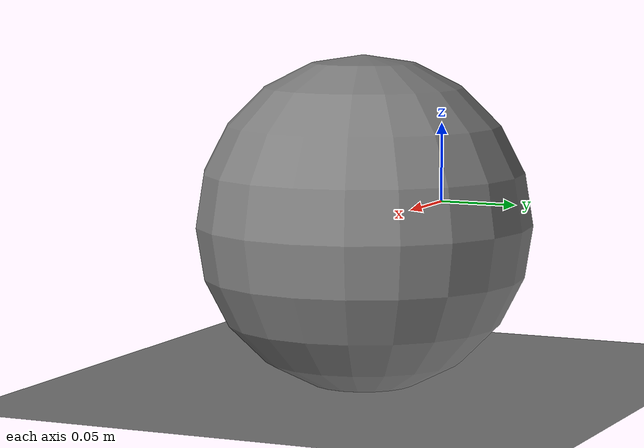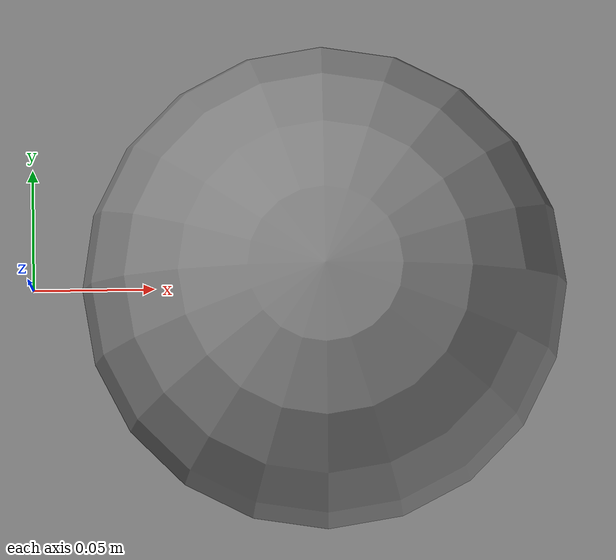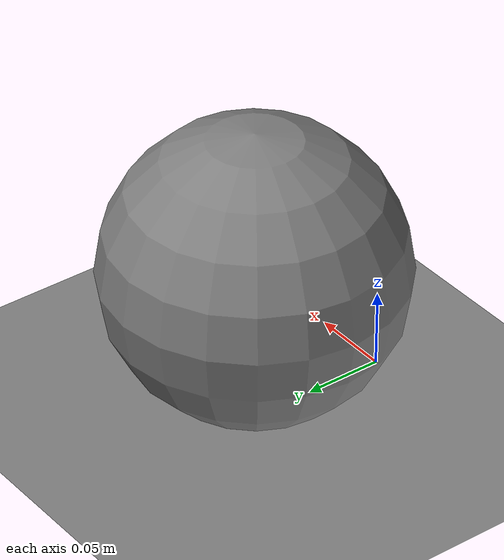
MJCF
<mujoco><option timestep=".0005" integrator="Euler" gravity="0 0 -9.81" solver="Newton" cone="pyramidal" jacobian="auto"><flag constraint="enable" warmstart="disable" island="disable" /></option><worldbody><body name="ref" pos=".25 0 0" /><body name="carrier_0"><freejoint /><inertial pos="0 0 0" mass=".05" diaginertia=".0002 .0002 .0002" /><body name="a"><joint name="j" type="ball" limited="true" frictionloss=".002" range="0 1.5" /><geom pos=".12 0 0" size=".1" mass="1" /></body></body><geom name="controller_floor" type="plane" size="3 3 .1" pos="0 0 -.095" friction=".6 .01 .001" condim="3" /></worldbody><actuator><general joint="j" input="expmap" dyntype="integrator" gaintype="so3" biastype="so3" actdim="3" gainprm="3" biasprm="0 -3.0 -0.2" /></actuator><equality><connect body1="a" body2="ref" anchor=".12 0 0" /></equality></mujoco>
